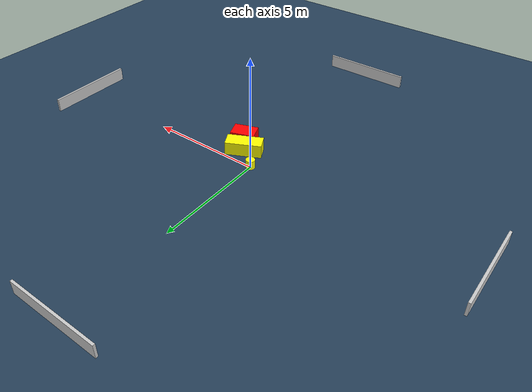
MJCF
<?xml version="1.0" ?>
<mujoco model="generated_environment">
  <option timestep="0.01" integrator="RK4" cone="elliptic"/>
  <default>
    <geom density="1"/>
  </default>
  <asset>
    <texture builtin="gradient" height="3072" name="skybox" rgb1="0.3 0.5 0.7" rgb2="0 0 0" type="skybox" width="512"/>
    <texture builtin="checker" height="300" name="groundplane" rgb1="0.2 0.3 0.4" rgb2="0.1 0.2 0.3" type="2d" width="300"/>
    <material name="groundplane" reflectance="0.2" texrepeat="5 5" texture="groundplane"/>
  </asset>
  <worldbody>
    <light dir="0 0 -1" directional="true" pos="0 0 1.5"/>
    <geom condim="3" friction="0.5 0.005 0.001" material="groundplane" name="floor" pos="0 0 0" size="0 0 0.05" type="plane"/>
    <body name="walls">
      <geom name="wall_1" condim="4" pos="-10.0 0.0 0.3" rgba="0.800000011920929 0.800000011920929 0.800000011920929 1.0" size="0.05 2.0 0.3" type="box"/>
      <geom name="wall_2" condim="4" pos="10.0 0.0 0.3" rgba="0.800000011920929 0.800000011920929 0.800000011920929 1.0" size="0.05 2.0 0.3" type="box"/>
      <geom name="wall_3" condim="4" pos="0.0 -10.0 0.3" rgba="0.800000011920929 0.800000011920929 0.800000011920929 1.0" size="2.0 0.05 0.3" type="box"/>
      <geom name="wall_4" condim="4" pos="0.0 10.0 0.3" rgba="0.800000011920929 0.800000011920929 0.800000011920929 1.0" size="2.0 0.05 0.3" type="box"/>
    </body>
    <body name="robot">
      <joint name="joint_x" type="slide" pos="0 0 0" axis="1 0 0"/>
      <joint name="joint_y" type="slide" pos="0 0 0" axis="0 1 0"/>
      <geom name="robot" type="cylinder" pos="0.0 0.0 0.2" size="0.2 0.2 0.0" mass="5.0" friction="1.0 0.005 0.0001" condim="4" rgba="1.0 1.0 0.0 1.0"/>
    </body>
    <body name="obstacle_1_movable">
      <geom name="obstacle_1_movable" condim="4" pos="0.8836825272745141 -0.7264931396394525 0.3" euler="0 0 206.57790198554198" friction="0.0 0.005 0.001" rgba="1.0 1.0 0.0 1.0" size="0.7941454695372288 0.34101417532386413 0.3" type="box" mass="0.1"/>
      <joint type="free"/>
    </body>
    <body name="obstacle_2_static">
      <geom name="obstacle_2_static" condim="4" pos="1.3682468367768075 -1.3555691891504331 0.3" euler="0 0 109.78322866366791" friction="0.0 0.005 0.001" rgba="1.0 0.0 0.0 1.0" size="0.3707291670700378 0.5372032351683613 0.3" type="box"/>
    </body>
  </worldbody>
  <actuator>
    <motor name="actuator_x" joint="joint_x" gear="1" ctrlrange="-1 1"/>
    <motor name="actuator_y" joint="joint_y" gear="1" ctrlrange="-1 1"/>
  </actuator>
</mujoco>
